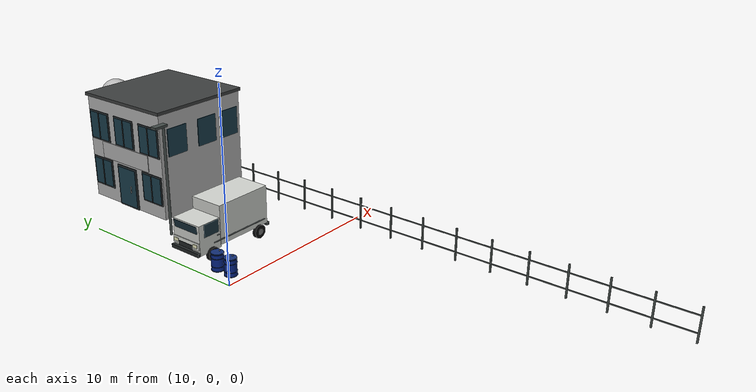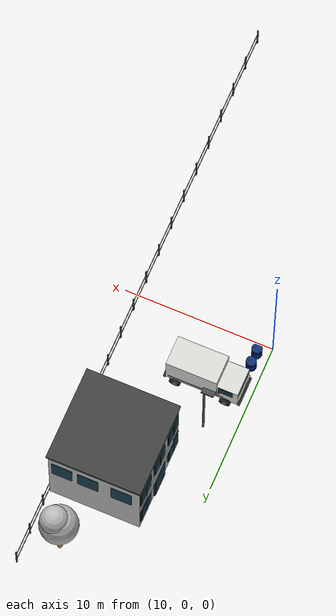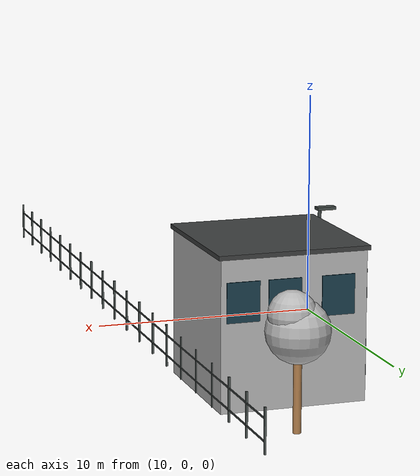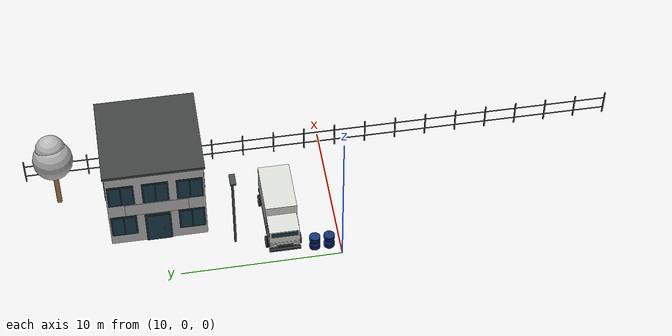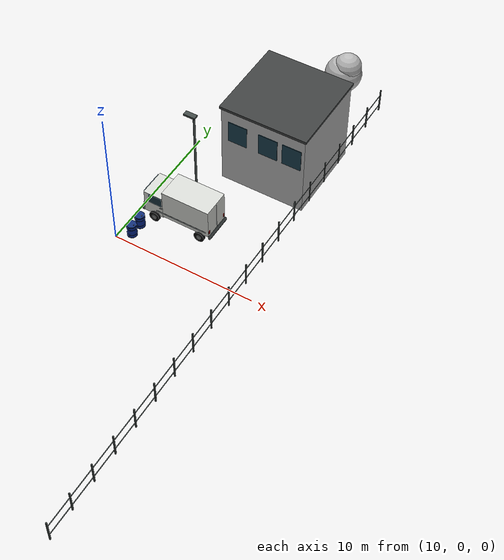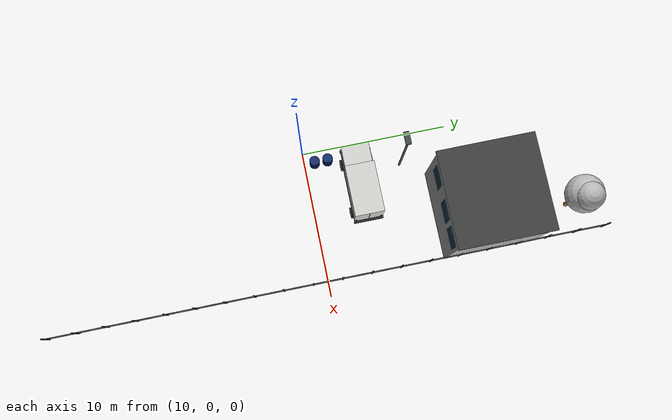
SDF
<sdf version="1.5">
 <world name="default">
  <include><uri>model://sun</uri></include>
  <model name="white_delivery_van">
   <static>true</static>
   <pose>13 3.5 0.003 0 0 0</pose>
   <link name="structure">
    <visual name="cargo_box">
     <pose>0.65 0 1.71 0 0 0</pose>
     <geometry><box><size>3.4 1.96 2.15</size></box></geometry>
     <material>
      <ambient>0.83 0.84 0.82 1</ambient>
      <diffuse>0.83 0.84 0.82 1</diffuse>
      <specular>0.04 0.04 0.04 1</specular>
     </material>
    </visual>
    <collision name="cargo_box_collision">
     <pose>0.65 0 1.71 0 0 0</pose>
     <geometry><box><size>3.4 1.96 2.15</size></box></geometry>
     <surface><friction><ode><mu>1.0</mu><mu2>1.0</mu2></ode></friction></surface>
    </collision>
    <visual name="cabin">
     <pose>-1.725 0 1.31 0 0 0</pose>
     <geometry><box><size>1.45 1.87 1.64</size></box></geometry>
     <material>
      <ambient>0.83 0.84 0.82 1</ambient>
      <diffuse>0.83 0.84 0.82 1</diffuse>
      <specular>0.04 0.04 0.04 1</specular>
     </material>
    </visual>
    <collision name="cabin_collision">
     <pose>-1.725 0 1.31 0 0 0</pose>
     <geometry><box><size>1.45 1.87 1.64</size></box></geometry>
     <surface><friction><ode><mu>1.0</mu><mu2>1.0</mu2></ode></friction></surface>
    </collision>
    <visual name="bonnet">
     <pose>-2.2 0 0.99 0 0.08 0</pose>
     <geometry><box><size>0.65 1.85 0.37</size></box></geometry>
     <material>
      <ambient>0.83 0.84 0.82 1</ambient>
      <diffuse>0.83 0.84 0.82 1</diffuse>
      <specular>0.04 0.04 0.04 1</specular>
     </material>
    </visual>
    <visual name="front_windshield">
     <pose>-2.456 0 1.75 0 -0.17 0</pose>
     <geometry><box><size>0.018 1.63 0.7</size></box></geometry>
     <material>
      <ambient>0.1 0.2 0.25 1</ambient>
      <diffuse>0.1 0.2 0.25 1</diffuse>
      <specular>0.04 0.04 0.04 1</specular>
     </material>
    </visual>
    <visual name="front_bumper">
     <pose>-2.54 0 0.6 0 0 0</pose>
     <geometry><box><size>0.16 1.95 0.2</size></box></geometry>
     <material>
      <ambient>0.13 0.15 0.15 1</ambient>
      <diffuse>0.13 0.15 0.15 1</diffuse>
      <specular>0.04 0.04 0.04 1</specular>
     </material>
    </visual>
    <visual name="rear_bumper">
     <pose>2.42 0 0.56 0 0 0</pose>
     <geometry><box><size>0.16 2 0.18</size></box></geometry>
     <material>
      <ambient>0.13 0.15 0.15 1</ambient>
      <diffuse>0.13 0.15 0.15 1</diffuse>
      <specular>0.04 0.04 0.04 1</specular>
     </material>
    </visual>
    <visual name="front_grille">
     <pose>-2.539 0 0.89 0 0 0</pose>
     <geometry><box><size>0.022 0.97 0.24</size></box></geometry>
     <material>
      <ambient>0.13 0.15 0.15 1</ambient>
      <diffuse>0.13 0.15 0.15 1</diffuse>
      <specular>0.04 0.04 0.04 1</specular>
     </material>
    </visual>
    <visual name="cabin_window_-1">
     <pose>-1.63 -0.944 1.75 0 0 0</pose>
     <geometry><box><size>0.97 0.021 0.69</size></box></geometry>
     <material>
      <ambient>0.1 0.2 0.25 1</ambient>
      <diffuse>0.1 0.2 0.25 1</diffuse>
      <specular>0.04 0.04 0.04 1</specular>
     </material>
    </visual>
    <visual name="door_handle_-1">
     <pose>-1.19 -0.97 1.26 0 0 0</pose>
     <geometry><box><size>0.18 0.035 0.045</size></box></geometry>
     <material>
      <ambient>0.13 0.15 0.15 1</ambient>
      <diffuse>0.13 0.15 0.15 1</diffuse>
      <specular>0.04 0.04 0.04 1</specular>
     </material>
    </visual>
    <visual name="side_rubstrip_-1">
     <pose>0.33 -0.996 0.94 0 0 0</pose>
     <geometry><box><size>3.7 0.025 0.06</size></box></geometry>
     <material>
      <ambient>0.13 0.15 0.15 1</ambient>
      <diffuse>0.13 0.15 0.15 1</diffuse>
      <specular>0.04 0.04 0.04 1</specular>
     </material>
    </visual>
    <visual name="headlamp_-1">
     <pose>-2.54 -0.68 1.02 0 0 0</pose>
     <geometry><box><size>0.031 0.3 0.18</size></box></geometry>
     <material>
      <ambient>0.93 0.93 0.76 1</ambient>
      <diffuse>0.93 0.93 0.76 1</diffuse>
      <specular>0.04 0.04 0.04 1</specular>
     </material>
    </visual>
    <visual name="rear_lamp_-1">
     <pose>2.365 -0.85 0.98 0 0 0</pose>
     <geometry><box><size>0.025 0.12 0.26</size></box></geometry>
     <material>
      <ambient>0.66 0.028 0.015 1</ambient>
      <diffuse>0.66 0.028 0.015 1</diffuse>
      <specular>0.04 0.04 0.04 1</specular>
     </material>
    </visual>
    <visual name="wheel_-1_0">
     <pose>-1.65 -1 0.37 1.570796 0 0</pose>
     <geometry><cylinder><radius>0.37</radius><length>0.22</length></cylinder></geometry>
     <material>
      <ambient>0.035 0.036 0.038 1</ambient>
      <diffuse>0.035 0.036 0.038 1</diffuse>
      <specular>0.04 0.04 0.04 1</specular>
     </material>
    </visual>
    <collision name="wheel_-1_0_collision">
     <pose>-1.65 -1 0.37 1.570796 0 0</pose>
     <geometry><cylinder><radius>0.37</radius><length>0.22</length></cylinder></geometry>
     <surface><friction><ode><mu>1.0</mu><mu2>1.0</mu2></ode></friction></surface>
    </collision>
    <visual name="wheel_hub_-1_0">
     <pose>-1.65 -1.015 0.37 1.570796 0 0</pose>
     <geometry><cylinder><radius>0.17</radius><length>0.225</length></cylinder></geometry>
     <material>
      <ambient>0.47 0.48 0.48 1</ambient>
      <diffuse>0.47 0.48 0.48 1</diffuse>
      <specular>0.04 0.04 0.04 1</specular>
     </material>
    </visual>
    <visual name="wheel_-1_1">
     <pose>1.7 -1 0.37 1.570796 0 0</pose>
     <geometry><cylinder><radius>0.37</radius><length>0.22</length></cylinder></geometry>
     <material>
      <ambient>0.035 0.036 0.038 1</ambient>
      <diffuse>0.035 0.036 0.038 1</diffuse>
      <specular>0.04 0.04 0.04 1</specular>
     </material>
    </visual>
    <collision name="wheel_-1_1_collision">
     <pose>1.7 -1 0.37 1.570796 0 0</pose>
     <geometry><cylinder><radius>0.37</radius><length>0.22</length></cylinder></geometry>
     <surface><friction><ode><mu>1.0</mu><mu2>1.0</mu2></ode></friction></surface>
    </collision>
    <visual name="wheel_hub_-1_1">
     <pose>1.7 -1.015 0.37 1.570796 0 0</pose>
     <geometry><cylinder><radius>0.17</radius><length>0.225</length></cylinder></geometry>
     <material>
      <ambient>0.47 0.48 0.48 1</ambient>
      <diffuse>0.47 0.48 0.48 1</diffuse>
      <specular>0.04 0.04 0.04 1</specular>
     </material>
    </visual>
    <visual name="cabin_window_1">
     <pose>-1.63 0.944 1.75 0 0 0</pose>
     <geometry><box><size>0.97 0.021 0.69</size></box></geometry>
     <material>
      <ambient>0.1 0.2 0.25 1</ambient>
      <diffuse>0.1 0.2 0.25 1</diffuse>
      <specular>0.04 0.04 0.04 1</specular>
     </material>
    </visual>
    <visual name="door_handle_1">
     <pose>-1.19 0.97 1.26 0 0 0</pose>
     <geometry><box><size>0.18 0.035 0.045</size></box></geometry>
     <material>
      <ambient>0.13 0.15 0.15 1</ambient>
      <diffuse>0.13 0.15 0.15 1</diffuse>
      <specular>0.04 0.04 0.04 1</specular>
     </material>
    </visual>
    <visual name="side_rubstrip_1">
     <pose>0.33 0.996 0.94 0 0 0</pose>
     <geometry><box><size>3.7 0.025 0.06</size></box></geometry>
     <material>
      <ambient>0.13 0.15 0.15 1</ambient>
      <diffuse>0.13 0.15 0.15 1</diffuse>
      <specular>0.04 0.04 0.04 1</specular>
     </material>
    </visual>
    <visual name="headlamp_1">
     <pose>-2.54 0.68 1.02 0 0 0</pose>
     <geometry><box><size>0.031 0.3 0.18</size></box></geometry>
     <material>
      <ambient>0.93 0.93 0.76 1</ambient>
      <diffuse>0.93 0.93 0.76 1</diffuse>
      <specular>0.04 0.04 0.04 1</specular>
     </material>
    </visual>
    <visual name="rear_lamp_1">
     <pose>2.365 0.85 0.98 0 0 0</pose>
     <geometry><box><size>0.025 0.12 0.26</size></box></geometry>
     <material>
      <ambient>0.66 0.028 0.015 1</ambient>
      <diffuse>0.66 0.028 0.015 1</diffuse>
      <specular>0.04 0.04 0.04 1</specular>
     </material>
    </visual>
    <visual name="wheel_1_0">
     <pose>-1.65 1 0.37 1.570796 0 0</pose>
     <geometry><cylinder><radius>0.37</radius><length>0.22</length></cylinder></geometry>
     <material>
      <ambient>0.035 0.036 0.038 1</ambient>
      <diffuse>0.035 0.036 0.038 1</diffuse>
      <specular>0.04 0.04 0.04 1</specular>
     </material>
    </visual>
    <collision name="wheel_1_0_collision">
     <pose>-1.65 1 0.37 1.570796 0 0</pose>
     <geometry><cylinder><radius>0.37</radius><length>0.22</length></cylinder></geometry>
     <surface><friction><ode><mu>1.0</mu><mu2>1.0</mu2></ode></friction></surface>
    </collision>
    <visual name="wheel_hub_1_0">
     <pose>-1.65 1.015 0.37 1.570796 0 0</pose>
     <geometry><cylinder><radius>0.17</radius><length>0.225</length></cylinder></geometry>
     <material>
      <ambient>0.47 0.48 0.48 1</ambient>
      <diffuse>0.47 0.48 0.48 1</diffuse>
      <specular>0.04 0.04 0.04 1</specular>
     </material>
    </visual>
    <visual name="wheel_1_1">
     <pose>1.7 1 0.37 1.570796 0 0</pose>
     <geometry><cylinder><radius>0.37</radius><length>0.22</length></cylinder></geometry>
     <material>
      <ambient>0.035 0.036 0.038 1</ambient>
      <diffuse>0.035 0.036 0.038 1</diffuse>
      <specular>0.04 0.04 0.04 1</specular>
     </material>
    </visual>
    <collision name="wheel_1_1_collision">
     <pose>1.7 1 0.37 1.570796 0 0</pose>
     <geometry><cylinder><radius>0.37</radius><length>0.22</length></cylinder></geometry>
     <surface><friction><ode><mu>1.0</mu><mu2>1.0</mu2></ode></friction></surface>
    </collision>
    <visual name="wheel_hub_1_1">
     <pose>1.7 1.015 0.37 1.570796 0 0</pose>
     <geometry><cylinder><radius>0.17</radius><length>0.225</length></cylinder></geometry>
     <material>
      <ambient>0.47 0.48 0.48 1</ambient>
      <diffuse>0.47 0.48 0.48 1</diffuse>
      <specular>0.04 0.04 0.04 1</specular>
     </material>
    </visual>
    <visual name="cargo_rear_door_split">
     <pose>2.365 0 1.72 0 0 0</pose>
     <geometry><box><size>0.026 0.025 1.95</size></box></geometry>
     <material>
      <ambient>0.13 0.15 0.15 1</ambient>
      <diffuse>0.13 0.15 0.15 1</diffuse>
      <specular>0.04 0.04 0.04 1</specular>
     </material>
    </visual>
   </link>
  </model>
  <model name="blue_drum">
   <static>true</static>
   <pose>10.8 0.7 0.003 0 0 0</pose>
   <link name="structure">
    <visual name="drum_body">
     <pose>0 0 0.48 0 0 0</pose>
     <geometry><cylinder><radius>0.32</radius><length>0.94</length></cylinder></geometry>
     <material>
      <ambient>0.03 0.15 0.53 1</ambient>
      <diffuse>0.03 0.15 0.53 1</diffuse>
      <specular>0.04 0.04 0.04 1</specular>
     </material>
    </visual>
    <collision name="drum_body_collision">
     <pose>0 0 0.48 0 0 0</pose>
     <geometry><cylinder><radius>0.32</radius><length>0.94</length></cylinder></geometry>
     <surface><friction><ode><mu>1.0</mu><mu2>1.0</mu2></ode></friction></surface>
    </collision>
    <visual name="drum_ring_0">
     <pose>0 0 0.04 0 0 0</pose>
     <geometry><cylinder><radius>0.342</radius><length>0.026</length></cylinder></geometry>
     <material>
      <ambient>0.1 0.19 0.4 1</ambient>
      <diffuse>0.1 0.19 0.4 1</diffuse>
      <specular>0.04 0.04 0.04 1</specular>
     </material>
    </visual>
    <visual name="drum_ring_1">
     <pose>0 0 0.27 0 0 0</pose>
     <geometry><cylinder><radius>0.342</radius><length>0.026</length></cylinder></geometry>
     <material>
      <ambient>0.1 0.19 0.4 1</ambient>
      <diffuse>0.1 0.19 0.4 1</diffuse>
      <specular>0.04 0.04 0.04 1</specular>
     </material>
    </visual>
    <visual name="drum_ring_2">
     <pose>0 0 0.72 0 0 0</pose>
     <geometry><cylinder><radius>0.342</radius><length>0.026</length></cylinder></geometry>
     <material>
      <ambient>0.1 0.19 0.4 1</ambient>
      <diffuse>0.1 0.19 0.4 1</diffuse>
      <specular>0.04 0.04 0.04 1</specular>
     </material>
    </visual>
    <visual name="drum_ring_3">
     <pose>0 0 0.94 0 0 0</pose>
     <geometry><cylinder><radius>0.342</radius><length>0.026</length></cylinder></geometry>
     <material>
      <ambient>0.1 0.19 0.4 1</ambient>
      <diffuse>0.1 0.19 0.4 1</diffuse>
      <specular>0.04 0.04 0.04 1</specular>
     </material>
    </visual>
    <visual name="drum_lid">
     <pose>0 0 0.971 0 0 0</pose>
     <geometry><cylinder><radius>0.32</radius><length>0.035</length></cylinder></geometry>
     <material>
      <ambient>0.07 0.18 0.46 1</ambient>
      <diffuse>0.07 0.18 0.46 1</diffuse>
      <specular>0.04 0.04 0.04 1</specular>
     </material>
    </visual>
    <visual name="lid_bung">
     <pose>0.17 0 0.997 0 0 0</pose>
     <geometry><cylinder><radius>0.043</radius><length>0.018</length></cylinder></geometry>
     <material>
      <ambient>0.39 0.4 0.4 1</ambient>
      <diffuse>0.39 0.4 0.4 1</diffuse>
      <specular>0.04 0.04 0.04 1</specular>
     </material>
    </visual>
   </link>
  </model>
  <model name="blue_drum_rear">
   <static>true</static>
   <pose>10.8 1.6 0.003 0 0 0</pose>
   <link name="structure">
    <visual name="drum_body">
     <pose>0 0 0.48 0 0 0</pose>
     <geometry><cylinder><radius>0.32</radius><length>0.94</length></cylinder></geometry>
     <material>
      <ambient>0.03 0.15 0.53 1</ambient>
      <diffuse>0.03 0.15 0.53 1</diffuse>
      <specular>0.04 0.04 0.04 1</specular>
     </material>
    </visual>
    <collision name="drum_body_collision">
     <pose>0 0 0.48 0 0 0</pose>
     <geometry><cylinder><radius>0.32</radius><length>0.94</length></cylinder></geometry>
     <surface><friction><ode><mu>1.0</mu><mu2>1.0</mu2></ode></friction></surface>
    </collision>
    <visual name="drum_ring_0">
     <pose>0 0 0.04 0 0 0</pose>
     <geometry><cylinder><radius>0.342</radius><length>0.026</length></cylinder></geometry>
     <material>
      <ambient>0.1 0.19 0.4 1</ambient>
      <diffuse>0.1 0.19 0.4 1</diffuse>
      <specular>0.04 0.04 0.04 1</specular>
     </material>
    </visual>
    <visual name="drum_ring_1">
     <pose>0 0 0.27 0 0 0</pose>
     <geometry><cylinder><radius>0.342</radius><length>0.026</length></cylinder></geometry>
     <material>
      <ambient>0.1 0.19 0.4 1</ambient>
      <diffuse>0.1 0.19 0.4 1</diffuse>
      <specular>0.04 0.04 0.04 1</specular>
     </material>
    </visual>
    <visual name="drum_ring_2">
     <pose>0 0 0.72 0 0 0</pose>
     <geometry><cylinder><radius>0.342</radius><length>0.026</length></cylinder></geometry>
     <material>
      <ambient>0.1 0.19 0.4 1</ambient>
      <diffuse>0.1 0.19 0.4 1</diffuse>
      <specular>0.04 0.04 0.04 1</specular>
     </material>
    </visual>
    <visual name="drum_ring_3">
     <pose>0 0 0.94 0 0 0</pose>
     <geometry><cylinder><radius>0.342</radius><length>0.026</length></cylinder></geometry>
     <material>
      <ambient>0.1 0.19 0.4 1</ambient>
      <diffuse>0.1 0.19 0.4 1</diffuse>
      <specular>0.04 0.04 0.04 1</specular>
     </material>
    </visual>
    <visual name="drum_lid">
     <pose>0 0 0.971 0 0 0</pose>
     <geometry><cylinder><radius>0.32</radius><length>0.035</length></cylinder></geometry>
     <material>
      <ambient>0.07 0.18 0.46 1</ambient>
      <diffuse>0.07 0.18 0.46 1</diffuse>
      <specular>0.04 0.04 0.04 1</specular>
     </material>
    </visual>
    <visual name="lid_bung">
     <pose>0.17 0 0.997 0 0 0</pose>
     <geometry><cylinder><radius>0.043</radius><length>0.018</length></cylinder></geometry>
     <material>
      <ambient>0.39 0.4 0.4 1</ambient>
      <diffuse>0.39 0.4 0.4 1</diffuse>
      <specular>0.04 0.04 0.04 1</specular>
     </material>
    </visual>
   </link>
  </model>
  <model name="park_office">
   <static>true</static>
   <pose>16 11 0.003 0 0 0</pose>
   <link name="structure">
    <visual name="office_shell">
     <pose>0 0 3.05 0 0 0</pose>
     <geometry><box><size>6 6 6.1</size></box></geometry>
     <material>
      <script>
       <uri>file:///home/fxxk/px4_agent/scene/materials/scripts</uri>
       <uri>file:///home/fxxk/px4_agent/scene/materials/textures</uri>
       <name>Yard/concrete</name>
      </script>
     </material>
    </visual>
    <collision name="office_shell_collision">
     <pose>0 0 3.05 0 0 0</pose>
     <geometry><box><size>6 6 6.1</size></box></geometry>
     <surface><friction><ode><mu>1.0</mu><mu2>1.0</mu2></ode></friction></surface>
    </collision>
    <visual name="office_roof">
     <pose>0 0 6.19 0 0 0</pose>
     <geometry><box><size>6.2 6.2 0.18</size></box></geometry>
     <material>
      <ambient>0.24 0.25 0.25 1</ambient>
      <diffuse>0.24 0.25 0.25 1</diffuse>
      <specular>0.04 0.04 0.04 1</specular>
     </material>
    </visual>
    <collision name="office_roof_collision">
     <pose>0 0 6.19 0 0 0</pose>
     <geometry><box><size>6.2 6.2 0.18</size></box></geometry>
     <surface><friction><ode><mu>1.0</mu><mu2>1.0</mu2></ode></friction></surface>
    </collision>
    <visual name="front_frame_0_0">
     <pose>-3.025 -2.1 1.65 0 0 0</pose>
     <geometry><box><size>0.045 1.62 1.72</size></box></geometry>
     <material>
      <ambient>0.18 0.2 0.21 1</ambient>
      <diffuse>0.18 0.2 0.21 1</diffuse>
      <specular>0.04 0.04 0.04 1</specular>
     </material>
    </visual>
    <visual name="front_glass_0_0">
     <pose>-3.056 -2.1 1.65 0 0 0</pose>
     <geometry><box><size>0.05 1.44 1.54</size></box></geometry>
     <material>
      <ambient>0.1 0.24 0.3 1</ambient>
      <diffuse>0.1 0.24 0.3 1</diffuse>
      <specular>0.04 0.04 0.04 1</specular>
     </material>
    </visual>
    <visual name="window_mullion_0_0">
     <pose>-3.086 -2.1 1.65 0 0 0</pose>
     <geometry><box><size>0.055 0.06 1.58</size></box></geometry>
     <material>
      <ambient>0.18 0.2 0.21 1</ambient>
      <diffuse>0.18 0.2 0.21 1</diffuse>
      <specular>0.04 0.04 0.04 1</specular>
     </material>
    </visual>
    <visual name="front_frame_0_2">
     <pose>-3.025 2.1 1.65 0 0 0</pose>
     <geometry><box><size>0.045 1.62 1.72</size></box></geometry>
     <material>
      <ambient>0.18 0.2 0.21 1</ambient>
      <diffuse>0.18 0.2 0.21 1</diffuse>
      <specular>0.04 0.04 0.04 1</specular>
     </material>
    </visual>
    <visual name="front_glass_0_2">
     <pose>-3.056 2.1 1.65 0 0 0</pose>
     <geometry><box><size>0.05 1.44 1.54</size></box></geometry>
     <material>
      <ambient>0.1 0.24 0.3 1</ambient>
      <diffuse>0.1 0.24 0.3 1</diffuse>
      <specular>0.04 0.04 0.04 1</specular>
     </material>
    </visual>
    <visual name="window_mullion_0_2">
     <pose>-3.086 2.1 1.65 0 0 0</pose>
     <geometry><box><size>0.055 0.06 1.58</size></box></geometry>
     <material>
      <ambient>0.18 0.2 0.21 1</ambient>
      <diffuse>0.18 0.2 0.21 1</diffuse>
      <specular>0.04 0.04 0.04 1</specular>
     </material>
    </visual>
    <visual name="front_frame_1_0">
     <pose>-3.025 -2.1 4.45 0 0 0</pose>
     <geometry><box><size>0.045 1.62 1.72</size></box></geometry>
     <material>
      <ambient>0.18 0.2 0.21 1</ambient>
      <diffuse>0.18 0.2 0.21 1</diffuse>
      <specular>0.04 0.04 0.04 1</specular>
     </material>
    </visual>
    <visual name="front_glass_1_0">
     <pose>-3.056 -2.1 4.45 0 0 0</pose>
     <geometry><box><size>0.05 1.44 1.54</size></box></geometry>
     <material>
      <ambient>0.1 0.24 0.3 1</ambient>
      <diffuse>0.1 0.24 0.3 1</diffuse>
      <specular>0.04 0.04 0.04 1</specular>
     </material>
    </visual>
    <visual name="window_mullion_1_0">
     <pose>-3.086 -2.1 4.45 0 0 0</pose>
     <geometry><box><size>0.055 0.06 1.58</size></box></geometry>
     <material>
      <ambient>0.18 0.2 0.21 1</ambient>
      <diffuse>0.18 0.2 0.21 1</diffuse>
      <specular>0.04 0.04 0.04 1</specular>
     </material>
    </visual>
    <visual name="front_frame_1_1">
     <pose>-3.025 0 4.45 0 0 0</pose>
     <geometry><box><size>0.045 1.62 1.72</size></box></geometry>
     <material>
      <ambient>0.18 0.2 0.21 1</ambient>
      <diffuse>0.18 0.2 0.21 1</diffuse>
      <specular>0.04 0.04 0.04 1</specular>
     </material>
    </visual>
    <visual name="front_glass_1_1">
     <pose>-3.056 0 4.45 0 0 0</pose>
     <geometry><box><size>0.05 1.44 1.54</size></box></geometry>
     <material>
      <ambient>0.1 0.24 0.3 1</ambient>
      <diffuse>0.1 0.24 0.3 1</diffuse>
      <specular>0.04 0.04 0.04 1</specular>
     </material>
    </visual>
    <visual name="window_mullion_1_1">
     <pose>-3.086 0 4.45 0 0 0</pose>
     <geometry><box><size>0.055 0.06 1.58</size></box></geometry>
     <material>
      <ambient>0.18 0.2 0.21 1</ambient>
      <diffuse>0.18 0.2 0.21 1</diffuse>
      <specular>0.04 0.04 0.04 1</specular>
     </material>
    </visual>
    <visual name="front_frame_1_2">
     <pose>-3.025 2.1 4.45 0 0 0</pose>
     <geometry><box><size>0.045 1.62 1.72</size></box></geometry>
     <material>
      <ambient>0.18 0.2 0.21 1</ambient>
      <diffuse>0.18 0.2 0.21 1</diffuse>
      <specular>0.04 0.04 0.04 1</specular>
     </material>
    </visual>
    <visual name="front_glass_1_2">
     <pose>-3.056 2.1 4.45 0 0 0</pose>
     <geometry><box><size>0.05 1.44 1.54</size></box></geometry>
     <material>
      <ambient>0.1 0.24 0.3 1</ambient>
      <diffuse>0.1 0.24 0.3 1</diffuse>
      <specular>0.04 0.04 0.04 1</specular>
     </material>
    </visual>
    <visual name="window_mullion_1_2">
     <pose>-3.086 2.1 4.45 0 0 0</pose>
     <geometry><box><size>0.055 0.06 1.58</size></box></geometry>
     <material>
      <ambient>0.18 0.2 0.21 1</ambient>
      <diffuse>0.18 0.2 0.21 1</diffuse>
      <specular>0.04 0.04 0.04 1</specular>
     </material>
    </visual>
    <visual name="entrance_frame">
     <pose>-3.036 0 1.225 0 0 0</pose>
     <geometry><box><size>0.06 1.6 2.45</size></box></geometry>
     <material>
      <ambient>0.18 0.2 0.21 1</ambient>
      <diffuse>0.18 0.2 0.21 1</diffuse>
      <specular>0.04 0.04 0.04 1</specular>
     </material>
    </visual>
    <visual name="glass_entrance">
     <pose>-3.076 0 1.225 0 0 0</pose>
     <geometry><box><size>0.065 1.4 2.25</size></box></geometry>
     <material>
      <ambient>0.1 0.24 0.3 1</ambient>
      <diffuse>0.1 0.24 0.3 1</diffuse>
      <specular>0.04 0.04 0.04 1</specular>
     </material>
    </visual>
    <visual name="door_handle">
     <pose>-3.13 -0.32 1.15 0 0 0</pose>
     <geometry><box><size>0.07 0.028 0.4</size></box></geometry>
     <material>
      <ambient>0.63 0.65 0.65 1</ambient>
      <diffuse>0.63 0.65 0.65 1</diffuse>
      <specular>0.04 0.04 0.04 1</specular>
     </material>
    </visual>
    <visual name="office_name">
     <pose>-3.07 0 3.1 0 0 0</pose>
     <geometry><box><size>0.04 3.9 0.98</size></box></geometry>
     <material>
      <script>
       <uri>file:///home/fxxk/px4_agent/scene/materials/scripts</uri>
       <uri>file:///home/fxxk/px4_agent/scene/materials/textures</uri>
       <name>Yard/office_sign</name>
      </script>
     </material>
    </visual>
    <visual name="side_window_-1_0">
     <pose>-1.8 -3.029 4.4 0 0 0</pose>
     <geometry><box><size>1.35 0.045 1.6</size></box></geometry>
     <material>
      <ambient>0.1 0.24 0.3 1</ambient>
      <diffuse>0.1 0.24 0.3 1</diffuse>
      <specular>0.04 0.04 0.04 1</specular>
     </material>
    </visual>
    <visual name="side_window_-1_1">
     <pose>0.4 -3.029 4.4 0 0 0</pose>
     <geometry><box><size>1.35 0.045 1.6</size></box></geometry>
     <material>
      <ambient>0.1 0.24 0.3 1</ambient>
      <diffuse>0.1 0.24 0.3 1</diffuse>
      <specular>0.04 0.04 0.04 1</specular>
     </material>
    </visual>
    <visual name="side_window_-1_2">
     <pose>2.1 -3.029 4.4 0 0 0</pose>
     <geometry><box><size>1.35 0.045 1.6</size></box></geometry>
     <material>
      <ambient>0.1 0.24 0.3 1</ambient>
      <diffuse>0.1 0.24 0.3 1</diffuse>
      <specular>0.04 0.04 0.04 1</specular>
     </material>
    </visual>
    <visual name="side_window_1_0">
     <pose>-1.8 3.029 4.4 0 0 0</pose>
     <geometry><box><size>1.35 0.045 1.6</size></box></geometry>
     <material>
      <ambient>0.1 0.24 0.3 1</ambient>
      <diffuse>0.1 0.24 0.3 1</diffuse>
      <specular>0.04 0.04 0.04 1</specular>
     </material>
    </visual>
    <visual name="side_window_1_1">
     <pose>0.4 3.029 4.4 0 0 0</pose>
     <geometry><box><size>1.35 0.045 1.6</size></box></geometry>
     <material>
      <ambient>0.1 0.24 0.3 1</ambient>
      <diffuse>0.1 0.24 0.3 1</diffuse>
      <specular>0.04 0.04 0.04 1</specular>
     </material>
    </visual>
    <visual name="side_window_1_2">
     <pose>2.1 3.029 4.4 0 0 0</pose>
     <geometry><box><size>1.35 0.045 1.6</size></box></geometry>
     <material>
      <ambient>0.1 0.24 0.3 1</ambient>
      <diffuse>0.1 0.24 0.3 1</diffuse>
      <specular>0.04 0.04 0.04 1</specular>
     </material>
    </visual>
   </link>
  </model>
  <model name="yard_tree_6">
   <static>true</static>
   <pose>17 17 0.003 0 0 0</pose>
   <link name="structure">
    <visual name="trunk">
     <pose>0 0 1.6 0 0 0</pose>
     <geometry><cylinder><radius>0.16</radius><length>3.2</length></cylinder></geometry>
     <material>
      <script>
       <uri>file:///home/fxxk/px4_agent/scene/materials/scripts</uri>
       <uri>file:///home/fxxk/px4_agent/scene/materials/textures</uri>
       <name>Yard/wood</name>
      </script>
     </material>
    </visual>
    <collision name="trunk_collision">
     <pose>0 0 1.6 0 0 0</pose>
     <geometry><cylinder><radius>0.16</radius><length>3.2</length></cylinder></geometry>
     <surface><friction><ode><mu>1.0</mu><mu2>1.0</mu2></ode></friction></surface>
    </collision>
    <visual name="crown">
     <pose>0 0 3.95 0 0 0</pose>
     <geometry><sphere><radius>1.25</radius></sphere></geometry>
     <material>
      <script>
       <uri>file:///home/fxxk/px4_agent/scene/materials/scripts</uri>
       <uri>file:///home/fxxk/px4_agent/scene/materials/textures</uri>
       <name>Yard/foliage</name>
      </script>
     </material>
    </visual>
    <collision name="crown_collision">
     <pose>0 0 3.95 0 0 0</pose>
     <geometry><sphere><radius>1.25</radius></sphere></geometry>
     <surface><friction><ode><mu>1.0</mu><mu2>1.0</mu2></ode></friction></surface>
    </collision>
    <visual name="crown_top">
     <pose>0.25 0.06 4.6 0 0 0</pose>
     <geometry><sphere><radius>0.9375</radius></sphere></geometry>
     <material>
      <script>
       <uri>file:///home/fxxk/px4_agent/scene/materials/scripts</uri>
       <uri>file:///home/fxxk/px4_agent/scene/materials/textures</uri>
       <name>Yard/foliage</name>
      </script>
     </material>
    </visual>
   </link>
  </model>
  <model name="street_lamp_north">
   <static>true</static>
   <pose>12 6.4 0.003 0 0 0</pose>
   <link name="structure">
    <visual name="lamp_pole">
     <pose>0 0 3.075 0 0 0</pose>
     <geometry><cylinder><radius>0.075</radius><length>6.15</length></cylinder></geometry>
     <material>
      <ambient>0.26 0.29 0.28 1</ambient>
      <diffuse>0.26 0.29 0.28 1</diffuse>
      <specular>0.04 0.04 0.04 1</specular>
     </material>
    </visual>
    <collision name="lamp_pole_collision">
     <pose>0 0 3.075 0 0 0</pose>
     <geometry><cylinder><radius>0.075</radius><length>6.15</length></cylinder></geometry>
     <surface><friction><ode><mu>1.0</mu><mu2>1.0</mu2></ode></friction></surface>
    </collision>
    <visual name="lamp_head">
     <pose>-0.26 0 6.17 0 0 0</pose>
     <geometry><box><size>0.82 0.36 0.13</size></box></geometry>
     <material>
      <ambient>0.26 0.29 0.28 1</ambient>
      <diffuse>0.26 0.29 0.28 1</diffuse>
      <specular>0.04 0.04 0.04 1</specular>
     </material>
    </visual>
    <visual name="lamp_glass">
     <pose>-0.26 0 6.098 0 0 0</pose>
     <geometry><box><size>0.67 0.28 0.015</size></box></geometry>
     <cast_shadows>false</cast_shadows>
     <material>
      <ambient>0.82 0.82 0.66 1</ambient>
      <diffuse>0.82 0.82 0.66 1</diffuse>
      <specular>0.04 0.04 0.04 1</specular>
     </material>
    </visual>
   </link>
  </model>
  <model name="east_fence">
   <static>true</static>
   <pose>19 0 0.003 0 0 0</pose>
   <link name="structure">
    <collision name="fence_collision">
     <pose>0 0 .9 0 0 0</pose>
     <geometry><box><size>0.12 38 1.8</size></box></geometry>
    </collision>
    <visual name="fence_post_0">
     <pose>0 -19 0.9 0 0 0</pose>
     <geometry><box><size>0.08 0.08 1.8</size></box></geometry>
     <material>
      <ambient>0.31 0.34 0.33 1</ambient>
      <diffuse>0.31 0.34 0.33 1</diffuse>
      <specular>0.04 0.04 0.04 1</specular>
     </material>
    </visual>
    <visual name="fence_post_1">
     <pose>0 -17 0.9 0 0 0</pose>
     <geometry><box><size>0.08 0.08 1.8</size></box></geometry>
     <material>
      <ambient>0.31 0.34 0.33 1</ambient>
      <diffuse>0.31 0.34 0.33 1</diffuse>
      <specular>0.04 0.04 0.04 1</specular>
     </material>
    </visual>
    <visual name="fence_post_2">
     <pose>0 -15 0.9 0 0 0</pose>
     <geometry><box><size>0.08 0.08 1.8</size></box></geometry>
     <material>
      <ambient>0.31 0.34 0.33 1</ambient>
      <diffuse>0.31 0.34 0.33 1</diffuse>
      <specular>0.04 0.04 0.04 1</specular>
     </material>
    </visual>
    <visual name="fence_post_3">
     <pose>0 -13 0.9 0 0 0</pose>
     <geometry><box><size>0.08 0.08 1.8</size></box></geometry>
     <material>
      <ambient>0.31 0.34 0.33 1</ambient>
      <diffuse>0.31 0.34 0.33 1</diffuse>
      <specular>0.04 0.04 0.04 1</specular>
     </material>
    </visual>
    <visual name="fence_post_4">
     <pose>0 -11 0.9 0 0 0</pose>
     <geometry><box><size>0.08 0.08 1.8</size></box></geometry>
     <material>
      <ambient>0.31 0.34 0.33 1</ambient>
      <diffuse>0.31 0.34 0.33 1</diffuse>
      <specular>0.04 0.04 0.04 1</specular>
     </material>
    </visual>
    <visual name="fence_post_5">
     <pose>0 -9 0.9 0 0 0</pose>
     <geometry><box><size>0.08 0.08 1.8</size></box></geometry>
     <material>
      <ambient>0.31 0.34 0.33 1</ambient>
      <diffuse>0.31 0.34 0.33 1</diffuse>
      <specular>0.04 0.04 0.04 1</specular>
     </material>
    </visual>
    <visual name="fence_post_6">
     <pose>0 -7 0.9 0 0 0</pose>
     <geometry><box><size>0.08 0.08 1.8</size></box></geometry>
     <material>
      <ambient>0.31 0.34 0.33 1</ambient>
      <diffuse>0.31 0.34 0.33 1</diffuse>
      <specular>0.04 0.04 0.04 1</specular>
     </material>
    </visual>
    <visual name="fence_post_7">
     <pose>0 -5 0.9 0 0 0</pose>
     <geometry><box><size>0.08 0.08 1.8</size></box></geometry>
     <material>
      <ambient>0.31 0.34 0.33 1</ambient>
      <diffuse>0.31 0.34 0.33 1</diffuse>
      <specular>0.04 0.04 0.04 1</specular>
     </material>
    </visual>
    <visual name="fence_post_8">
     <pose>0 -3 0.9 0 0 0</pose>
     <geometry><box><size>0.08 0.08 1.8</size></box></geometry>
     <material>
      <ambient>0.31 0.34 0.33 1</ambient>
      <diffuse>0.31 0.34 0.33 1</diffuse>
      <specular>0.04 0.04 0.04 1</specular>
     </material>
    </visual>
    <visual name="fence_post_9">
     <pose>0 -1 0.9 0 0 0</pose>
     <geometry><box><size>0.08 0.08 1.8</size></box></geometry>
     <material>
      <ambient>0.31 0.34 0.33 1</ambient>
      <diffuse>0.31 0.34 0.33 1</diffuse>
      <specular>0.04 0.04 0.04 1</specular>
     </material>
    </visual>
    <visual name="fence_post_10">
     <pose>0 1 0.9 0 0 0</pose>
     <geometry><box><size>0.08 0.08 1.8</size></box></geometry>
     <material>
      <ambient>0.31 0.34 0.33 1</ambient>
      <diffuse>0.31 0.34 0.33 1</diffuse>
      <specular>0.04 0.04 0.04 1</specular>
     </material>
    </visual>
    <visual name="fence_post_11">
     <pose>0 3 0.9 0 0 0</pose>
     <geometry><box><size>0.08 0.08 1.8</size></box></geometry>
     <material>
      <ambient>0.31 0.34 0.33 1</ambient>
      <diffuse>0.31 0.34 0.33 1</diffuse>
      <specular>0.04 0.04 0.04 1</specular>
     </material>
    </visual>
    <visual name="fence_post_12">
     <pose>0 5 0.9 0 0 0</pose>
     <geometry><box><size>0.08 0.08 1.8</size></box></geometry>
     <material>
      <ambient>0.31 0.34 0.33 1</ambient>
      <diffuse>0.31 0.34 0.33 1</diffuse>
      <specular>0.04 0.04 0.04 1</specular>
     </material>
    </visual>
    <visual name="fence_post_13">
     <pose>0 7 0.9 0 0 0</pose>
     <geometry><box><size>0.08 0.08 1.8</size></box></geometry>
     <material>
      <ambient>0.31 0.34 0.33 1</ambient>
      <diffuse>0.31 0.34 0.33 1</diffuse>
      <specular>0.04 0.04 0.04 1</specular>
     </material>
    </visual>
    <visual name="fence_post_14">
     <pose>0 9 0.9 0 0 0</pose>
     <geometry><box><size>0.08 0.08 1.8</size></box></geometry>
     <material>
      <ambient>0.31 0.34 0.33 1</ambient>
      <diffuse>0.31 0.34 0.33 1</diffuse>
      <specular>0.04 0.04 0.04 1</specular>
     </material>
    </visual>
    <visual name="fence_post_15">
     <pose>0 11 0.9 0 0 0</pose>
     <geometry><box><size>0.08 0.08 1.8</size></box></geometry>
     <material>
      <ambient>0.31 0.34 0.33 1</ambient>
      <diffuse>0.31 0.34 0.33 1</diffuse>
      <specular>0.04 0.04 0.04 1</specular>
     </material>
    </visual>
    <visual name="fence_post_16">
     <pose>0 13 0.9 0 0 0</pose>
     <geometry><box><size>0.08 0.08 1.8</size></box></geometry>
     <material>
      <ambient>0.31 0.34 0.33 1</ambient>
      <diffuse>0.31 0.34 0.33 1</diffuse>
      <specular>0.04 0.04 0.04 1</specular>
     </material>
    </visual>
    <visual name="fence_post_17">
     <pose>0 15 0.9 0 0 0</pose>
     <geometry><box><size>0.08 0.08 1.8</size></box></geometry>
     <material>
      <ambient>0.31 0.34 0.33 1</ambient>
      <diffuse>0.31 0.34 0.33 1</diffuse>
      <specular>0.04 0.04 0.04 1</specular>
     </material>
    </visual>
    <visual name="fence_post_18">
     <pose>0 17 0.9 0 0 0</pose>
     <geometry><box><size>0.08 0.08 1.8</size></box></geometry>
     <material>
      <ambient>0.31 0.34 0.33 1</ambient>
      <diffuse>0.31 0.34 0.33 1</diffuse>
      <specular>0.04 0.04 0.04 1</specular>
     </material>
    </visual>
    <visual name="fence_post_19">
     <pose>0 19 0.9 0 0 0</pose>
     <geometry><box><size>0.08 0.08 1.8</size></box></geometry>
     <material>
      <ambient>0.31 0.34 0.33 1</ambient>
      <diffuse>0.31 0.34 0.33 1</diffuse>
      <specular>0.04 0.04 0.04 1</specular>
     </material>
    </visual>
    <visual name="fence_rail_0">
     <pose>0 0 0.48 0 0 0</pose>
     <geometry><box><size>0.04 38 0.055</size></box></geometry>
     <material>
      <ambient>0.35 0.38 0.37 1</ambient>
      <diffuse>0.35 0.38 0.37 1</diffuse>
      <specular>0.04 0.04 0.04 1</specular>
     </material>
    </visual>
    <visual name="fence_rail_1">
     <pose>0 0 1.35 0 0 0</pose>
     <geometry><box><size>0.04 38 0.055</size></box></geometry>
     <material>
      <ambient>0.35 0.38 0.37 1</ambient>
      <diffuse>0.35 0.38 0.37 1</diffuse>
      <specular>0.04 0.04 0.04 1</specular>
     </material>
    </visual>
   </link>
  </model>
 </world>
</sdf>
